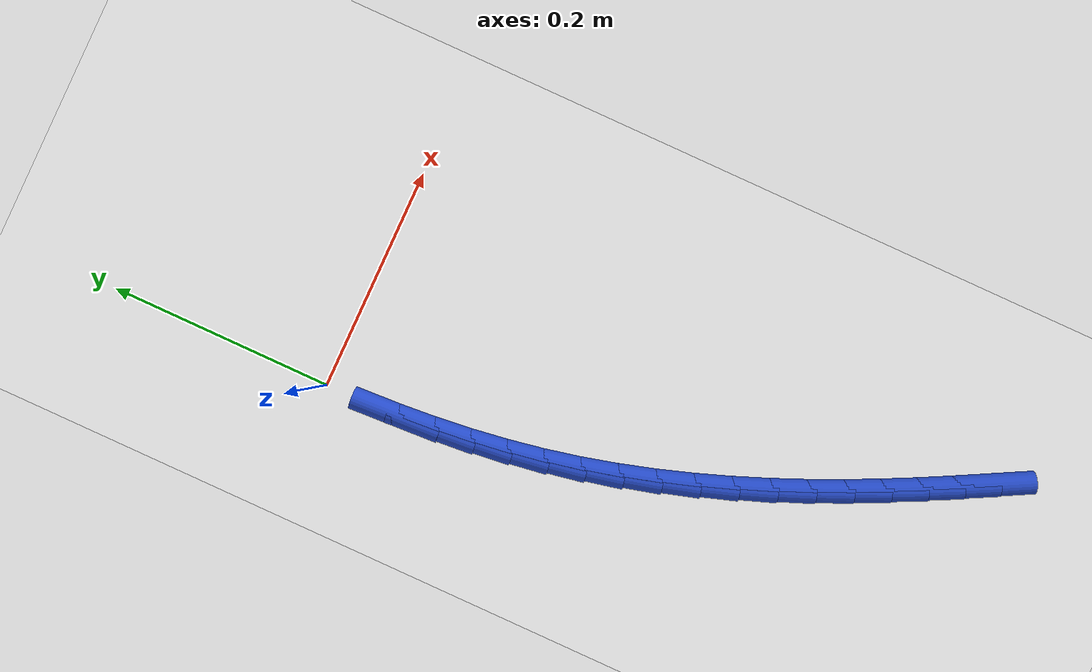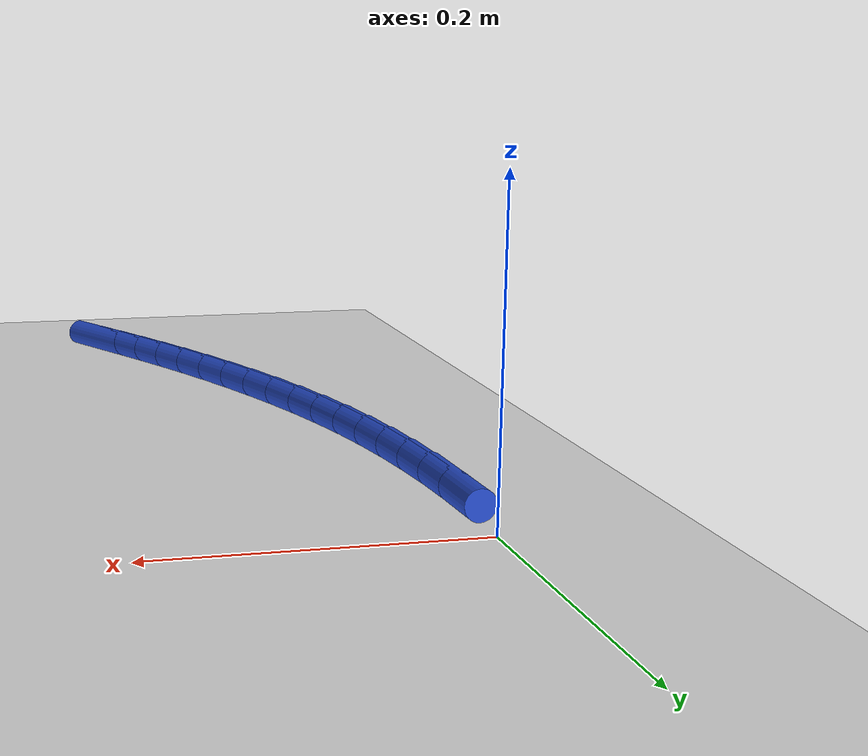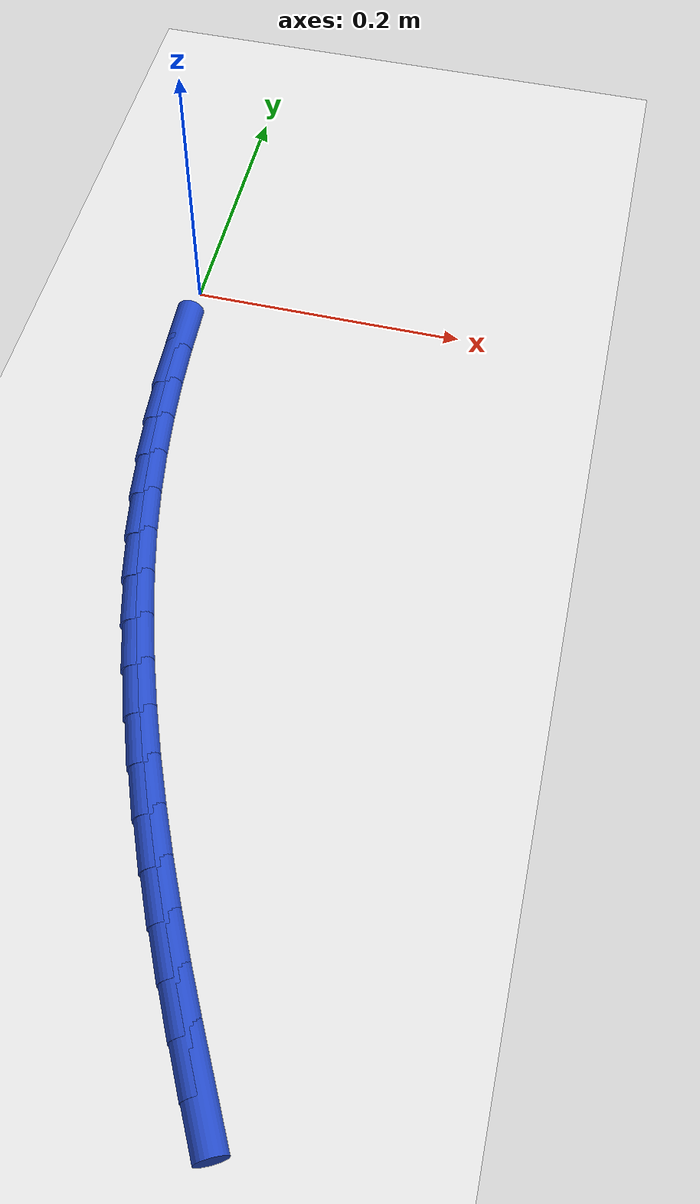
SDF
<sdf version="1.6">
 <world name="default">
  <model name="ground_plane">
   <static>1</static>
   <link name="link">
    <collision name="collision">
     <geometry><plane><normal>0 0 1</normal><size>100 100</size></plane></geometry>
     <surface><friction><ode><mu>100</mu><mu2>50</mu2></ode></friction></surface>
    </collision>
    <visual name="visual">
     <cast_shadows>0</cast_shadows>
     <geometry><plane><normal>0 0 1</normal><size>100 100</size></plane></geometry>
     <material>
      <script><uri>file://media/materials/scripts/gazebo.material</uri><name>Gazebo/WhiteGlow</name></script>
     </material>
    </visual>
   </link>
  </model>
  <model name="line">
   <link name="link_262">
    <pose>0.15742951514598882 -0.5499599787737544 0.01 0 1.57 -1.0820253270686133</pose>
    <collision name="collision">
     <geometry><cylinder><radius>0.01</radius><length>0.08</length></cylinder></geometry>
    </collision>
    <visual name="visual">
     <material>
      <script><name>Gazebo/Blue</name><uri>file://media/materials/scripts/gazebo.material</uri></script>
     </material>
     <geometry><cylinder><radius>0.01</radius><length>0.08</length></cylinder></geometry>
    </visual>
   </link>
   <link name="link_263">
    <pose>0.14315596408301548 -0.523120436538202 0.01 0 1.57 -1.093270722033989</pose>
    <collision name="collision">
     <geometry><cylinder><radius>0.01</radius><length>0.08</length></cylinder></geometry>
    </collision>
    <visual name="visual">
     <material>
      <script><name>Gazebo/Blue</name><uri>file://media/materials/scripts/gazebo.material</uri></script>
     </material>
     <geometry><cylinder><radius>0.01</radius><length>0.08</length></cylinder></geometry>
    </visual>
   </link>
   <link name="link_264">
    <pose>0.12908389635681852 -0.49592645023524146 0.01 0 1.57 -1.1082704465647386</pose>
    <collision name="collision">
     <geometry><cylinder><radius>0.01</radius><length>0.08</length></cylinder></geometry>
    </collision>
    <visual name="visual">
     <material>
      <script><name>Gazebo/Blue</name><uri>file://media/materials/scripts/gazebo.material</uri></script>
     </material>
     <geometry><cylinder><radius>0.01</radius><length>0.08</length></cylinder></geometry>
    </visual>
   </link>
   <link name="link_265">
    <pose>0.11528531583946923 -0.4682517238295915 0.01 0 1.57 -1.1267927228012427</pose>
    <collision name="collision">
     <geometry><cylinder><radius>0.01</radius><length>0.08</length></cylinder></geometry>
    </collision>
    <visual name="visual">
     <material>
      <script><name>Gazebo/Blue</name><uri>file://media/materials/scripts/gazebo.material</uri></script>
     </material>
     <geometry><cylinder><radius>0.01</radius><length>0.08</length></cylinder></geometry>
    </visual>
   </link>
   <link name="link_266">
    <pose>0.10183222640303895 -0.4399699612859709 0.01 0 1.57 -1.1484293486381831</pose>
    <collision name="collision">
     <geometry><cylinder><radius>0.01</radius><length>0.08</length></cylinder></geometry>
    </collision>
    <visual name="visual">
     <material>
      <script><name>Gazebo/Blue</name><uri>file://media/materials/scripts/gazebo.material</uri></script>
     </material>
     <geometry><cylinder><radius>0.01</radius><length>0.08</length></cylinder></geometry>
    </visual>
   </link>
   <link name="link_267">
    <pose>0.08880050349217003 -0.4109728533031853 0.01 0 1.57 -1.1720790229515958</pose>
    <collision name="collision">
     <geometry><cylinder><radius>0.01</radius><length>0.08</length></cylinder></geometry>
    </collision>
    <visual name="visual">
     <material>
      <script><name>Gazebo/Blue</name><uri>file://media/materials/scripts/gazebo.material</uri></script>
     </material>
     <geometry><cylinder><radius>0.01</radius><length>0.08</length></cylinder></geometry>
    </visual>
   </link>
   <link name="link_268">
    <pose>0.07629576646773739 -0.381290276266132 0.01 0 1.57 -1.1974663115936546</pose>
    <collision name="collision">
     <geometry><cylinder><radius>0.01</radius><length>0.08</length></cylinder></geometry>
    </collision>
    <visual name="visual">
     <material>
      <script><name>Gazebo/Blue</name><uri>file://media/materials/scripts/gazebo.material</uri></script>
     </material>
     <geometry><cylinder><radius>0.01</radius><length>0.08</length></cylinder></geometry>
    </visual>
   </link>
   <link name="link_269">
    <pose>0.06443742161929307 -0.35101615852191315 0.01 0 1.57 -1.2248157669960773</pose>
    <collision name="collision">
     <geometry><cylinder><radius>0.01</radius><length>0.08</length></cylinder></geometry>
    </collision>
    <visual name="visual">
     <material>
      <script><name>Gazebo/Blue</name><uri>file://media/materials/scripts/gazebo.material</uri></script>
     </material>
     <geometry><cylinder><radius>0.01</radius><length>0.08</length></cylinder></geometry>
    </visual>
   </link>
   <link name="link_270">
    <pose>0.053344950652134175 -0.3202447787876498 0.01 0 1.57 -1.2543770221467019</pose>
    <collision name="collision">
     <geometry><cylinder><radius>0.01</radius><length>0.08</length></cylinder></geometry>
    </collision>
    <visual name="visual">
     <material>
      <script><name>Gazebo/Blue</name><uri>file://media/materials/scripts/gazebo.material</uri></script>
     </material>
     <geometry><cylinder><radius>0.01</radius><length>0.08</length></cylinder></geometry>
    </visual>
   </link>
   <link name="link_271">
    <pose>0.04313783527155889 -0.2890704157804657 0.01 0 1.57 -1.2864251497648664</pose>
    <collision name="collision">
     <geometry><cylinder><radius>0.01</radius><length>0.08</length></cylinder></geometry>
    </collision>
    <visual name="visual">
     <material>
      <script><name>Gazebo/Blue</name><uri>file://media/materials/scripts/gazebo.material</uri></script>
     </material>
     <geometry><cylinder><radius>0.01</radius><length>0.08</length></cylinder></geometry>
    </visual>
   </link>
   <link name="link_272">
    <pose>0.03393555718286428 -0.25758734821748186 0.01 0 1.57 -1.321262550357584</pose>
    <collision name="collision">
     <geometry><cylinder><radius>0.01</radius><length>0.08</length></cylinder></geometry>
    </collision>
    <visual name="visual">
     <material>
      <script><name>Gazebo/Blue</name><uri>file://media/materials/scripts/gazebo.material</uri></script>
     </material>
     <geometry><cylinder><radius>0.01</radius><length>0.08</length></cylinder></geometry>
    </visual>
   </link>
   <link name="link_273">
    <pose>0.025857598091347786 -0.22588985481582027 0.01 0 1.57 -1.3585936929372942</pose>
    <collision name="collision">
     <geometry><cylinder><radius>0.01</radius><length>0.08</length></cylinder></geometry>
    </collision>
    <visual name="visual">
     <material>
      <script><name>Gazebo/Blue</name><uri>file://media/materials/scripts/gazebo.material</uri></script>
     </material>
     <geometry><cylinder><radius>0.01</radius><length>0.08</length></cylinder></geometry>
    </visual>
   </link>
   <link name="link_274">
    <pose>0.01899982478445767 -0.1940592985161108 0.01 0 1.57 -1.3951234018747825</pose>
    <collision name="collision">
     <geometry><cylinder><radius>0.01</radius><length>0.08</length></cylinder></geometry>
    </collision>
    <visual name="visual">
     <material>
      <script><name>Gazebo/Blue</name><uri>file://media/materials/scripts/gazebo.material</uri></script>
     </material>
     <geometry><cylinder><radius>0.01</radius><length>0.08</length></cylinder></geometry>
    </visual>
   </link>
   <link name="link_275">
    <pose>0.013328009618395906 -0.16210588932897657 0.01 0 1.57 -1.429501022616758</pose>
    <collision name="collision">
     <geometry><cylinder><radius>0.01</radius><length>0.08</length></cylinder></geometry>
    </collision>
    <visual name="visual">
     <material>
      <script><name>Gazebo/Blue</name><uri>file://media/materials/scripts/gazebo.material</uri></script>
     </material>
     <geometry><cylinder><radius>0.01</radius><length>0.08</length></cylinder></geometry>
    </visual>
   </link>
   <link name="link_276">
    <pose>0.008763366353113118 -0.13001546670090602 0.01 0 1.57 -1.4615518728094758</pose>
    <collision name="collision">
     <geometry><cylinder><radius>0.01</radius><length>0.08</length></cylinder></geometry>
    </collision>
    <visual name="visual">
     <material>
      <script><name>Gazebo/Blue</name><uri>file://media/materials/scripts/gazebo.material</uri></script>
     </material>
     <geometry><cylinder><radius>0.01</radius><length>0.08</length></cylinder></geometry>
    </visual>
   </link>
   <link name="link_277">
    <pose>0.005227069373620722 -0.09777384854293616 0.01 0 1.57 -1.4911436687459536</pose>
    <collision name="collision">
     <geometry><cylinder><radius>0.01</radius><length>0.08</length></cylinder></geometry>
    </collision>
    <visual name="visual">
     <material>
      <script><name>Gazebo/Blue</name><uri>file://media/materials/scripts/gazebo.material</uri></script>
     </material>
     <geometry><cylinder><radius>0.01</radius><length>0.08</length></cylinder></geometry>
    </visual>
   </link>
   <link name="link_278">
    <pose>0.002640293064930127 -0.06536685276610402 0.01 0 1.57 -1.5181826813154955</pose>
    <collision name="collision">
     <geometry><cylinder><radius>0.01</radius><length>0.08</length></cylinder></geometry>
    </collision>
    <visual name="visual">
     <material>
      <script><name>Gazebo/Blue</name><uri>file://media/materials/scripts/gazebo.material</uri></script>
     </material>
     <geometry><cylinder><radius>0.01</radius><length>0.08</length></cylinder></geometry>
    </visual>
   </link>
  </model>
 </world>
</sdf>
